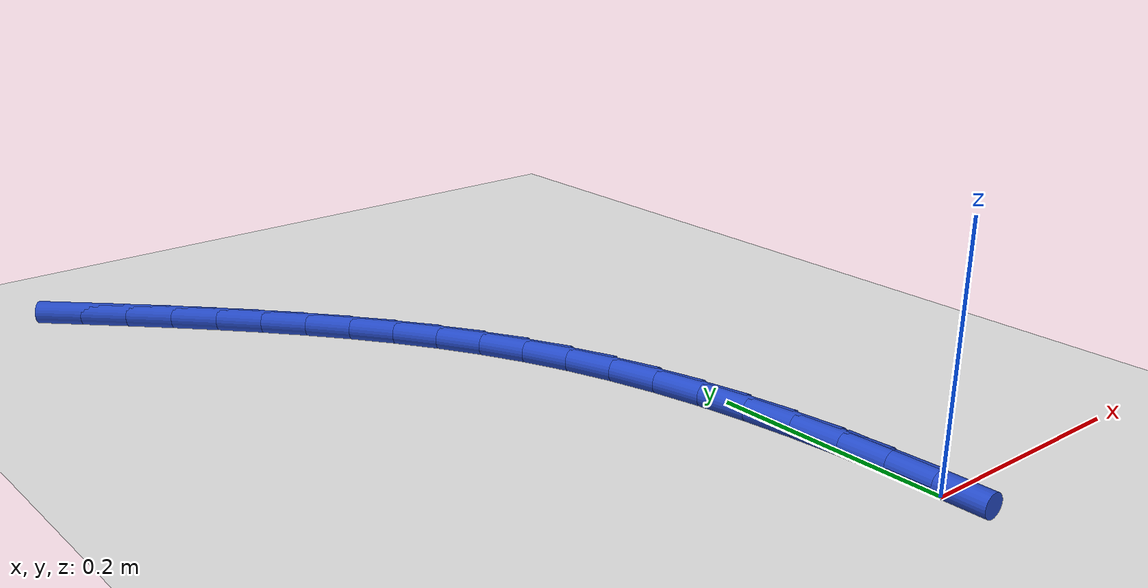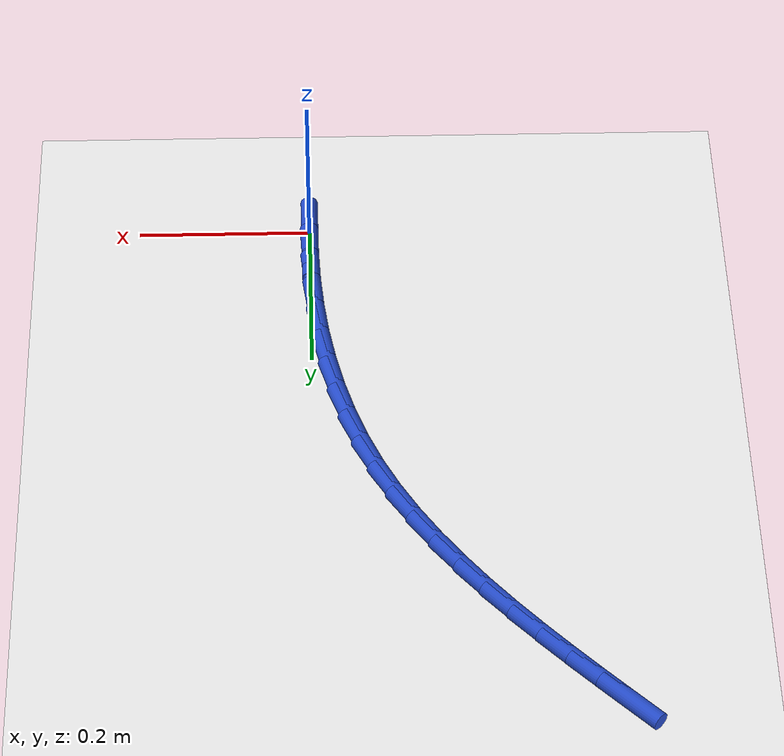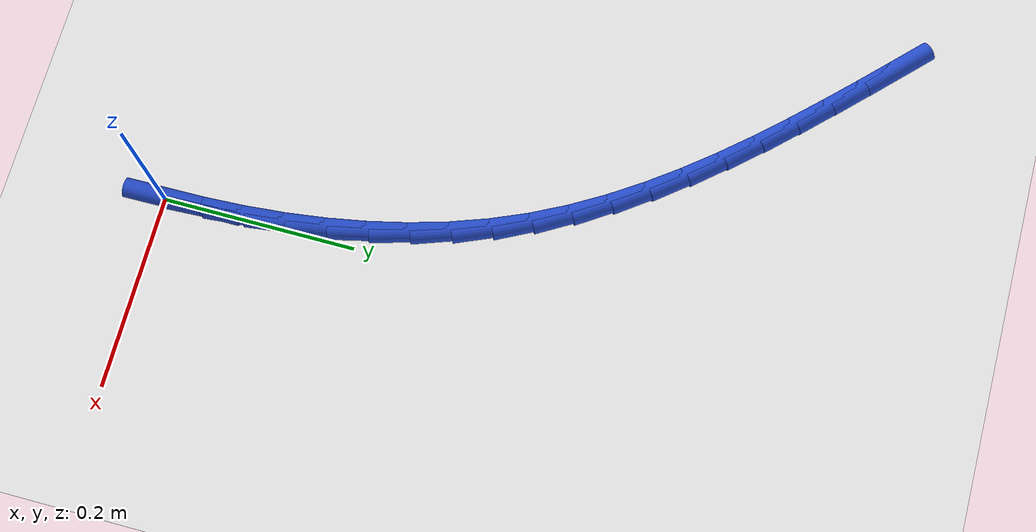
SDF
<sdf version="1.6">
 <world name="default">
  <model name="ground_plane">
   <static>1</static>
   <link name="link">
    <collision name="collision">
     <geometry><plane><normal>0 0 1</normal><size>100 100</size></plane></geometry>
     <surface><friction><ode><mu>100</mu><mu2>50</mu2></ode></friction></surface>
    </collision>
    <visual name="visual">
     <cast_shadows>0</cast_shadows>
     <geometry><plane><normal>0 0 1</normal><size>100 100</size></plane></geometry>
     <material>
      <script><uri>file://media/materials/scripts/gazebo.material</uri><name>Gazebo/WhiteGlow</name></script>
     </material>
    </visual>
   </link>
  </model>
  <model name="line">
   <link name="link_1">
    <pose>-0.0003562288091940997 0.0424079811880335 0.01 0 1.57 -1.5247359570351855</pose>
    <collision name="collision">
     <geometry><cylinder><radius>0.01</radius><length>0.08</length></cylinder></geometry>
    </collision>
    <visual name="visual">
     <material>
      <script><name>Gazebo/Blue</name><uri>file://media/materials/scripts/gazebo.material</uri></script>
     </material>
     <geometry><cylinder><radius>0.01</radius><length>0.08</length></cylinder></geometry>
    </visual>
   </link>
   <link name="link_2">
    <pose>-0.0023086248198908523 0.0847657633475471 0.01 0 1.57 -1.4842057410398612</pose>
    <collision name="collision">
     <geometry><cylinder><radius>0.01</radius><length>0.08</length></cylinder></geometry>
    </collision>
    <visual name="visual">
     <material>
      <script><name>Gazebo/Blue</name><uri>file://media/materials/scripts/gazebo.material</uri></script>
     </material>
     <geometry><cylinder><radius>0.01</radius><length>0.08</length></cylinder></geometry>
    </visual>
   </link>
   <link name="link_3">
    <pose>-0.00596728725873864 0.12691253602375624 0.01 0 1.57 -1.440479015036481</pose>
    <collision name="collision">
     <geometry><cylinder><radius>0.01</radius><length>0.08</length></cylinder></geometry>
    </collision>
    <visual name="visual">
     <material>
      <script><name>Gazebo/Blue</name><uri>file://media/materials/scripts/gazebo.material</uri></script>
     </material>
     <geometry><cylinder><radius>0.01</radius><length>0.08</length></cylinder></geometry>
    </visual>
   </link>
   <link name="link_4">
    <pose>-0.011442315352385822 0.16868748876187634 0.01 0 1.57 -1.3932230657818718</pose>
    <collision name="collision">
     <geometry><cylinder><radius>0.01</radius><length>0.08</length></cylinder></geometry>
    </collision>
    <visual name="visual">
     <material>
      <script><name>Gazebo/Blue</name><uri>file://media/materials/scripts/gazebo.material</uri></script>
     </material>
     <geometry><cylinder><radius>0.01</radius><length>0.08</length></cylinder></geometry>
    </visual>
   </link>
   <link name="link_5">
    <pose>-0.018843808327480775 0.2099298111071229 0.01 0 1.57 -1.3421105455488131</pose>
    <collision name="collision">
     <geometry><cylinder><radius>0.01</radius><length>0.08</length></cylinder></geometry>
    </collision>
    <visual name="visual">
     <material>
      <script><name>Gazebo/Blue</name><uri>file://media/materials/scripts/gazebo.material</uri></script>
     </material>
     <geometry><cylinder><radius>0.01</radius><length>0.08</length></cylinder></geometry>
    </visual>
   </link>
   <link name="link_6">
    <pose>-0.02828186541067184 0.250478692604711 0.01 0 1.57 -1.286836920057177</pose>
    <collision name="collision">
     <geometry><cylinder><radius>0.01</radius><length>0.08</length></cylinder></geometry>
    </collision>
    <visual name="visual">
     <material>
      <script><name>Gazebo/Blue</name><uri>file://media/materials/scripts/gazebo.material</uri></script>
     </material>
     <geometry><cylinder><radius>0.01</radius><length>0.08</length></cylinder></geometry>
    </visual>
   </link>
   <link name="link_7">
    <pose>-0.039866585828607394 0.29017332279985636 0.01 0 1.57 -1.227145391008153</pose>
    <collision name="collision">
     <geometry><cylinder><radius>0.01</radius><length>0.08</length></cylinder></geometry>
    </collision>
    <visual name="visual">
     <material>
      <script><name>Gazebo/Blue</name><uri>file://media/materials/scripts/gazebo.material</uri></script>
     </material>
     <geometry><cylinder><radius>0.01</radius><length>0.08</length></cylinder></geometry>
    </visual>
   </link>
   <link name="link_8">
    <pose>-0.05370806880793581 0.3288528912377743 0.01 0 1.57 -1.1628645254882457</pose>
    <collision name="collision">
     <geometry><cylinder><radius>0.01</radius><length>0.08</length></cylinder></geometry>
    </collision>
    <visual name="visual">
     <material>
      <script><name>Gazebo/Blue</name><uri>file://media/materials/scripts/gazebo.material</uri></script>
     </material>
     <geometry><cylinder><radius>0.01</radius><length>0.08</length></cylinder></geometry>
    </visual>
   </link>
   <link name="link_9">
    <pose>-0.06991626361049053 0.36635670991508085 0.01 0 1.57 -1.0965090194207292</pose>
    <collision name="collision">
     <geometry><cylinder><radius>0.01</radius><length>0.08</length></cylinder></geometry>
    </collision>
    <visual name="visual">
     <material>
      <script><name>Gazebo/Blue</name><uri>file://media/materials/scripts/gazebo.material</uri></script>
     </material>
     <geometry><cylinder><radius>0.01</radius><length>0.08</length></cylinder></geometry>
    </visual>
   </link>
   <link name="link_10">
    <pose>-0.08851828185614899 0.40259173059642406 0.01 0 1.57 -1.0351938888576513</pose>
    <collision name="collision">
     <geometry><cylinder><radius>0.01</radius><length>0.08</length></cylinder></geometry>
    </collision>
    <visual name="visual">
     <material>
      <script><name>Gazebo/Blue</name><uri>file://media/materials/scripts/gazebo.material</uri></script>
     </material>
     <geometry><cylinder><radius>0.01</radius><length>0.08</length></cylinder></geometry>
    </visual>
   </link>
   <link name="link_11">
    <pose>-0.10932107064573414 0.43764467690675574 0.01 0 1.57 -0.9804295119515052</pose>
    <collision name="collision">
     <geometry><cylinder><radius>0.01</radius><length>0.08</length></cylinder></geometry>
    </collision>
    <visual name="visual">
     <material>
      <script><name>Gazebo/Blue</name><uri>file://media/materials/scripts/gazebo.material</uri></script>
     </material>
     <geometry><cylinder><radius>0.01</radius><length>0.08</length></cylinder></geometry>
    </visual>
   </link>
   <link name="link_12">
    <pose>-0.13209540611197276 0.47163180730366855 0.01 0 1.57 -0.9323806596505106</pose>
    <collision name="collision">
     <geometry><cylinder><radius>0.01</radius><length>0.08</length></cylinder></geometry>
    </collision>
    <visual name="visual">
     <material>
      <script><name>Gazebo/Blue</name><uri>file://media/materials/scripts/gazebo.material</uri></script>
     </material>
     <geometry><cylinder><radius>0.01</radius><length>0.08</length></cylinder></geometry>
    </visual>
   </link>
   <link name="link_13">
    <pose>-0.1566120643875915 0.5046693802447554 0.01 0 1.57 -0.8910328413203374</pose>
    <collision name="collision">
     <geometry><cylinder><radius>0.01</radius><length>0.08</length></cylinder></geometry>
    </collision>
    <visual name="visual">
     <material>
      <script><name>Gazebo/Blue</name><uri>file://media/materials/scripts/gazebo.material</uri></script>
     </material>
     <geometry><cylinder><radius>0.01</radius><length>0.08</length></cylinder></geometry>
    </visual>
   </link>
   <link name="link_14">
    <pose>-0.18264182160531692 0.5368736541876082 0.01 0 1.57 -0.8562578924706724</pose>
    <collision name="collision">
     <geometry><cylinder><radius>0.01</radius><length>0.08</length></cylinder></geometry>
    </collision>
    <visual name="visual">
     <material>
      <script><name>Gazebo/Blue</name><uri>file://media/materials/scripts/gazebo.material</uri></script>
     </material>
     <geometry><cylinder><radius>0.01</radius><length>0.08</length></cylinder></geometry>
    </visual>
   </link>
   <link name="link_15">
    <pose>-0.2099554538978758 0.5683608875898203 0.01 0 1.57 -0.8278699339854914</pose>
    <collision name="collision">
     <geometry><cylinder><radius>0.01</radius><length>0.08</length></cylinder></geometry>
    </collision>
    <visual name="visual">
     <material>
      <script><name>Gazebo/Blue</name><uri>file://media/materials/scripts/gazebo.material</uri></script>
     </material>
     <geometry><cylinder><radius>0.01</radius><length>0.08</length></cylinder></geometry>
    </visual>
   </link>
   <link name="link_16">
    <pose>-0.2383237373979949 0.5992473389089841 0.01 0 1.57 -0.8056689649338641</pose>
    <collision name="collision">
     <geometry><cylinder><radius>0.01</radius><length>0.08</length></cylinder></geometry>
    </collision>
    <visual name="visual">
     <material>
      <script><name>Gazebo/Blue</name><uri>file://media/materials/scripts/gazebo.material</uri></script>
     </material>
     <geometry><cylinder><radius>0.01</radius><length>0.08</length></cylinder></geometry>
    </visual>
   </link>
   <link name="link_17">
    <pose>-0.26751744823840073 0.6296492666026922 0.01 0 1.57 -0.7894725915156587</pose>
    <collision name="collision">
     <geometry><cylinder><radius>0.01</radius><length>0.08</length></cylinder></geometry>
    </collision>
    <visual name="visual">
     <material>
      <script><name>Gazebo/Blue</name><uri>file://media/materials/scripts/gazebo.material</uri></script>
     </material>
     <geometry><cylinder><radius>0.01</radius><length>0.08</length></cylinder></geometry>
    </visual>
   </link>
   <link name="link_18">
    <pose>-0.2973073625518199 0.6596829291285371 0.01 0 1.57 -0.7791378650885057</pose>
    <collision name="collision">
     <geometry><cylinder><radius>0.01</radius><length>0.08</length></cylinder></geometry>
    </collision>
    <visual name="visual">
     <material>
      <script><name>Gazebo/Blue</name><uri>file://media/materials/scripts/gazebo.material</uri></script>
     </material>
     <geometry><cylinder><radius>0.01</radius><length>0.08</length></cylinder></geometry>
    </visual>
   </link>
   <link name="link_19">
    <pose>-0.32746425647097926 0.6894645849441114 0.01 0 1.57 -0.7745754951486501</pose>
    <collision name="collision">
     <geometry><cylinder><radius>0.01</radius><length>0.08</length></cylinder></geometry>
    </collision>
    <visual name="visual">
     <material>
      <script><name>Gazebo/Blue</name><uri>file://media/materials/scripts/gazebo.material</uri></script>
     </material>
     <geometry><cylinder><radius>0.01</radius><length>0.08</length></cylinder></geometry>
    </visual>
   </link>
   <link name="link_170">
    <pose>2.6020852139652106e-18 5.551115123125783e-17 0.01 0 1.57 -1.5630208059666104</pose>
    <collision name="collision">
     <geometry><cylinder><radius>0.01</radius><length>0.08</length></cylinder></geometry>
    </collision>
    <visual name="visual">
     <material>
      <script><name>Gazebo/Blue</name><uri>file://media/materials/scripts/gazebo.material</uri></script>
     </material>
     <geometry><cylinder><radius>0.01</radius><length>0.08</length></cylinder></geometry>
    </visual>
   </link>
   <link name="link_171">
    <pose>-0.00032984784344299543 0.04242046331134908 0.01 0 1.57 -1.5630208059666106</pose>
    <collision name="collision">
     <geometry><cylinder><radius>0.01</radius><length>0.08</length></cylinder></geometry>
    </collision>
    <visual name="visual">
     <material>
      <script><name>Gazebo/Blue</name><uri>file://media/materials/scripts/gazebo.material</uri></script>
     </material>
     <geometry><cylinder><radius>0.01</radius><length>0.08</length></cylinder></geometry>
    </visual>
   </link>
  </model>
 </world>
</sdf>
